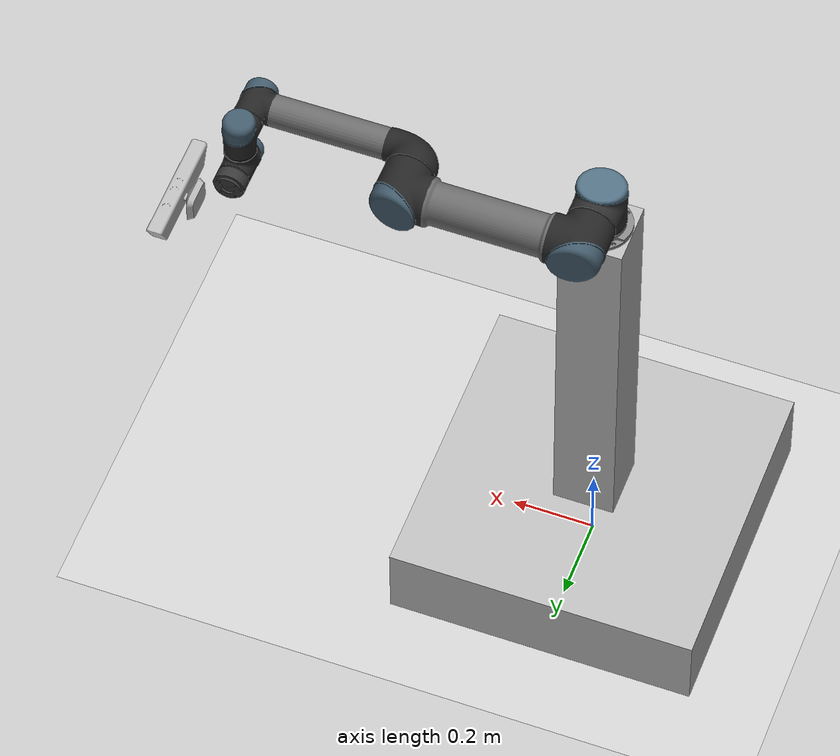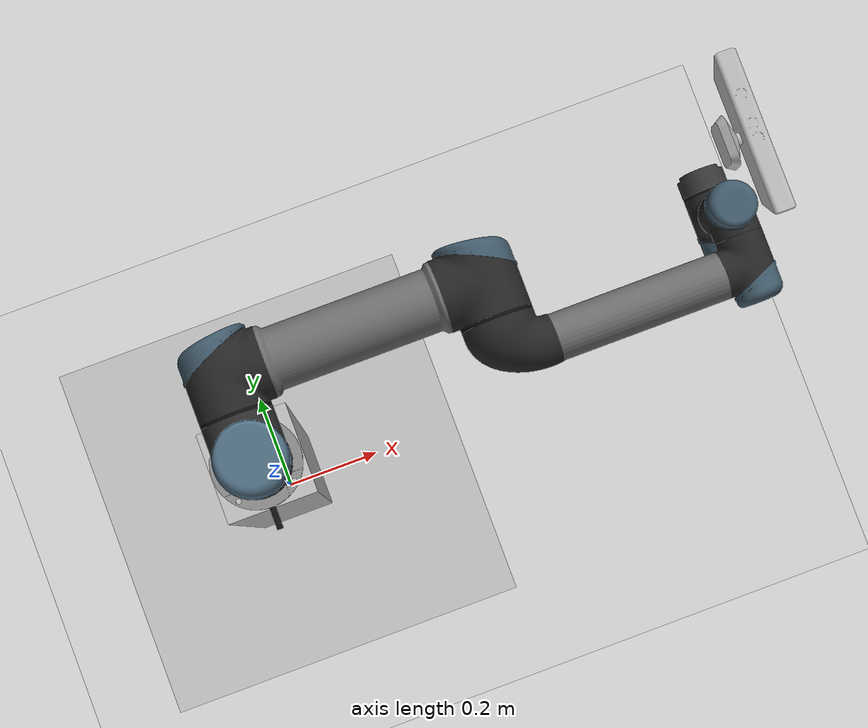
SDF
<sdf version="1.4">
 <world name="world">
  <model name="ground_plane">
   <static>1</static>
   <link name="link">
    <collision name="collision">
     <geometry><plane><normal>0 0 1</normal><size>100 100</size></plane></geometry>
     <surface><friction><ode><mu>100</mu><mu2>50</mu2></ode></friction></surface>
    </collision>
    <visual name="visual">
     <cast_shadows>0</cast_shadows>
     <geometry><plane><normal>0 0 1</normal><size>100 100</size></plane></geometry>
     <material>
      <script><uri>file://media/materials/scripts/gazebo.material</uri><name>Gazebo/Grey</name></script>
     </material>
    </visual>
    <velocity_decay><linear>0</linear><angular>0</angular></velocity_decay>
   </link>
  </model>
  <light name="sun" type="directional">
   <pose>0 0 10 0 -0 0</pose>
   <diffuse>0.8 0.8 0.8 1</diffuse>
   <specular>0.2 0.2 0.2 1</specular>
   <attenuation>
    <range>1000</range>
    <constant>0.9</constant>
    <linear>0.01</linear>
    <quadratic>0.001</quadratic>
   </attenuation>
   <direction>-0.5 0.1 -0.9</direction>
  </light>
  <physics type="ode">
   <max_step_size>0.001</max_step_size>
   <real_time_factor>1</real_time_factor>
   <real_time_update_rate>1000</real_time_update_rate>
   <gravity>0 0 -9.8</gravity>
  </physics>
  <scene><ambient>0.4 0.4 0.4 1</ambient><background>0.7 0.7 0.7 1</background><shadows>1</shadows></scene>
  <spherical_coordinates>
   <surface_model>EARTH_WGS84</surface_model>
   <latitude_deg>0</latitude_deg>
   <longitude_deg>0</longitude_deg>
   <elevation>0</elevation>
   <heading_deg>0</heading_deg>
  </spherical_coordinates>
  <model name="robot">
   <link name="ground_base1">
    <pose>0 0 -1.1 0 -0 0</pose>
    <inertial>
     <pose>0 0 0.0961039 0 -0 0</pose>
     <mass>154</mass>
     <inertia><ixx>8.3641</ixx><ixy>0</ixy><ixz>0</ixz><iyy>8.3641</iyy><iyz>0</iyz><izz>2.0512</izz></inertia>
    </inertial>
    <collision name="ground_base1_collision">
     <pose>0 0 0.1 0 -0 0</pose>
     <geometry><box><size>0.75 0.75 0.2</size></box></geometry>
    </collision>
    <collision name="ground_base1_collision_base_link">
     <pose>0 0 1.2 0 -0 0</pose>
     <geometry>
      <mesh>
       <scale>1 1 1</scale>
       <uri>/home/raina_pc/ur_vs_gazebo/src/universal_robot/ur_description/meshes/ur5/collision/base.stl</uri>
      </mesh>
     </geometry>
    </collision>
    <collision name="ground_base1_collision_base_pillar">
     <pose>0 0 0.7 0 -0 0</pose>
     <geometry><box><size>0.15 0.15 1</size></box></geometry>
    </collision>
    <visual name="ground_base1_visual">
     <pose>0 0 0.1 0 -0 0</pose>
     <geometry><box><size>0.75 0.75 0.2</size></box></geometry>
    </visual>
    <visual name="ground_base1_visual_base_link">
     <pose>0 0 1.2 0 -0 0</pose>
     <geometry>
      <mesh>
       <scale>1 1 1</scale>
       <uri>/home/raina_pc/ur_vs_gazebo/src/universal_robot/ur_description/meshes/ur5/visual/base.dae</uri>
      </mesh>
     </geometry>
    </visual>
    <visual name="ground_base1_visual_base_pillar">
     <pose>0 0 0.7 0 -0 0</pose>
     <geometry><box><size>0.15 0.15 1</size></box></geometry>
    </visual>
    <velocity_decay><linear>0</linear><angular>0</angular></velocity_decay>
   </link>
   <joint name="world_joint" type="revolute">
    <child>ground_base1</child>
    <parent>world</parent>
    <axis>
     <limit><lower>0</lower><upper>0</upper></limit>
     <dynamics><damping>0</damping></dynamics>
     <xyz>0 0 1</xyz>
    </axis>
   </joint>
   <link name="shoulder_link">
    <pose>0 0 0.189159 0 -0 0</pose>
    <inertial>
     <mass>3.7</mass>
     <inertia>
      <ixx>0.0102675</ixx>
      <ixy>0</ixy>
      <ixz>0</ixz>
      <iyy>0.0102675</iyy>
      <iyz>0</iyz>
      <izz>0.00666</izz>
     </inertia>
    </inertial>
    <collision name="shoulder_link_collision">
     <geometry>
      <mesh>
       <scale>1 1 1</scale>
       <uri>/home/raina_pc/ur_vs_gazebo/src/universal_robot/ur_description/meshes/ur5/collision/shoulder.stl</uri>
      </mesh>
     </geometry>
    </collision>
    <visual name="shoulder_link_visual">
     <geometry>
      <mesh>
       <scale>1 1 1</scale>
       <uri>/home/raina_pc/ur_vs_gazebo/src/universal_robot/ur_description/meshes/ur5/visual/shoulder.dae</uri>
      </mesh>
     </geometry>
    </visual>
    <velocity_decay><linear>0</linear><angular>0</angular></velocity_decay>
   </link>
   <joint name="shoulder_pan_joint" type="revolute">
    <child>shoulder_link</child>
    <parent>ground_base1</parent>
    <axis>
     <xyz>0 0 1</xyz>
     <limit><lower>-6.28319</lower><upper>6.28319</upper><effort>150</effort><velocity>3.15</velocity></limit>
     <dynamics><damping>0</damping></dynamics>
    </axis>
   </joint>
   <link name="upper_arm_link">
    <pose>0 0.13585 0.189159 3.14159 1.57079 3.14159</pose>
    <inertial>
     <pose>0 0 0.28 0 -0 0</pose>
     <mass>8.393</mass>
     <inertia>
      <ixx>0.226891</ixx>
      <ixy>0</ixy>
      <ixz>0</ixz>
      <iyy>0.226891</iyy>
      <iyz>0</iyz>
      <izz>0.0151074</izz>
     </inertia>
    </inertial>
    <collision name="upper_arm_link_collision">
     <geometry>
      <mesh>
       <scale>1 1 1</scale>
       <uri>/home/raina_pc/ur_vs_gazebo/src/universal_robot/ur_description/meshes/ur5/collision/upperarm.stl</uri>
      </mesh>
     </geometry>
    </collision>
    <visual name="upper_arm_link_visual">
     <geometry>
      <mesh>
       <scale>1 1 1</scale>
       <uri>/home/raina_pc/ur_vs_gazebo/src/universal_robot/ur_description/meshes/ur5/visual/upperarm.dae</uri>
      </mesh>
     </geometry>
    </visual>
    <velocity_decay><linear>0</linear><angular>0</angular></velocity_decay>
   </link>
   <joint name="shoulder_lift_joint" type="revolute">
    <child>upper_arm_link</child>
    <parent>shoulder_link</parent>
    <axis>
     <xyz>0 1 0</xyz>
     <limit><lower>-6.28319</lower><upper>6.28319</upper><effort>150</effort><velocity>3.15</velocity></limit>
     <dynamics><damping>0</damping></dynamics>
    </axis>
   </joint>
   <link name="forearm_link">
    <pose>0.425 0.01615 0.189159 3.14159 1.57079 3.14159</pose>
    <inertial>
     <pose>0 0 0.25 0 -0 0</pose>
     <mass>2.275</mass>
     <inertia>
      <ixx>0.0494433</ixx>
      <ixy>0</ixy>
      <ixz>0</ixz>
      <iyy>0.0494433</iyy>
      <iyz>0</iyz>
      <izz>0.004095</izz>
     </inertia>
    </inertial>
    <collision name="forearm_link_collision">
     <geometry>
      <mesh>
       <scale>1 1 1</scale>
       <uri>/home/raina_pc/ur_vs_gazebo/src/universal_robot/ur_description/meshes/ur5/collision/forearm.stl</uri>
      </mesh>
     </geometry>
    </collision>
    <visual name="forearm_link_visual">
     <geometry>
      <mesh>
       <scale>1 1 1</scale>
       <uri>/home/raina_pc/ur_vs_gazebo/src/universal_robot/ur_description/meshes/ur5/visual/forearm.dae</uri>
      </mesh>
     </geometry>
    </visual>
    <velocity_decay><linear>0</linear><angular>0</angular></velocity_decay>
   </link>
   <joint name="elbow_joint" type="revolute">
    <child>forearm_link</child>
    <parent>upper_arm_link</parent>
    <axis>
     <xyz>0 1 0</xyz>
     <limit><lower>-6.28319</lower><upper>6.28319</upper><effort>150</effort><velocity>3.15</velocity></limit>
     <dynamics><damping>0</damping></dynamics>
    </axis>
   </joint>
   <link name="wrist_1_link">
    <pose>0.81725 0.01615 0.189159 3.14159 3.58979e-09 3.14159</pose>
    <inertial>
     <mass>1.219</mass>
     <inertia>
      <ixx>0.111173</ixx>
      <ixy>0</ixy>
      <ixz>0</ixz>
      <iyy>0.111173</iyy>
      <iyz>0</iyz>
      <izz>0.21942</izz>
     </inertia>
    </inertial>
    <collision name="wrist_1_link_collision">
     <geometry>
      <mesh>
       <scale>1 1 1</scale>
       <uri>/home/raina_pc/ur_vs_gazebo/src/universal_robot/ur_description/meshes/ur5/collision/wrist1.stl</uri>
      </mesh>
     </geometry>
    </collision>
    <visual name="wrist_1_link_visual">
     <geometry>
      <mesh>
       <scale>1 1 1</scale>
       <uri>/home/raina_pc/ur_vs_gazebo/src/universal_robot/ur_description/meshes/ur5/visual/wrist1.dae</uri>
      </mesh>
     </geometry>
    </visual>
    <velocity_decay><linear>0</linear><angular>0</angular></velocity_decay>
   </link>
   <joint name="wrist_1_joint" type="revolute">
    <child>wrist_1_link</child>
    <parent>forearm_link</parent>
    <axis>
     <xyz>0 1 0</xyz>
     <limit><lower>-6.28319</lower><upper>6.28319</upper><effort>28</effort><velocity>3.2</velocity></limit>
     <dynamics><damping>0</damping></dynamics>
    </axis>
   </joint>
   <link name="wrist_2_link">
    <pose>0.81725 0.10915 0.189159 3.14159 3.58979e-09 3.14159</pose>
    <inertial>
     <mass>1.219</mass>
     <inertia>
      <ixx>0.111173</ixx>
      <ixy>0</ixy>
      <ixz>0</ixz>
      <iyy>0.111173</iyy>
      <iyz>0</iyz>
      <izz>0.21942</izz>
     </inertia>
    </inertial>
    <collision name="wrist_2_link_collision">
     <geometry>
      <mesh>
       <scale>1 1 1</scale>
       <uri>/home/raina_pc/ur_vs_gazebo/src/universal_robot/ur_description/meshes/ur5/collision/wrist2.stl</uri>
      </mesh>
     </geometry>
    </collision>
    <visual name="wrist_2_link_visual">
     <geometry>
      <mesh>
       <scale>1 1 1</scale>
       <uri>/home/raina_pc/ur_vs_gazebo/src/universal_robot/ur_description/meshes/ur5/visual/wrist2.dae</uri>
      </mesh>
     </geometry>
    </visual>
    <velocity_decay><linear>0</linear><angular>0</angular></velocity_decay>
   </link>
   <joint name="wrist_2_joint" type="revolute">
    <child>wrist_2_link</child>
    <parent>wrist_1_link</parent>
    <axis>
     <xyz>0 0 -1</xyz>
     <limit><lower>-6.28319</lower><upper>6.28319</upper><effort>28</effort><velocity>3.2</velocity></limit>
     <dynamics><damping>0</damping></dynamics>
    </axis>
   </joint>
   <link name="wrist_3_link">
    <pose>0.81725 0.10915 0.094509 3.14159 3.58979e-09 3.14159</pose>
    <inertial>
     <pose>-0.082511 0.0617332 0 0 -0 0</pose>
     <mass>0.7519</mass>
     <inertia>
      <ixx>0.0185901</ixx>
      <ixy>0.00127596</ixy>
      <ixz>0</ixz>
      <iyy>0.0227231</iyy>
      <iyz>0</iyz>
      <izz>0.0403613</izz>
     </inertia>
    </inertial>
    <collision name="wrist_3_link_collision">
     <geometry>
      <mesh>
       <scale>1 1 1</scale>
       <uri>/home/raina_pc/ur_vs_gazebo/src/universal_robot/ur_description/meshes/ur5/collision/wrist3.stl</uri>
      </mesh>
     </geometry>
    </collision>
    <collision name="wrist_3_link_collision_ee_link">
     <pose>-1.7949e-11 0.0723 0 0 -0 1.5708</pose>
     <geometry><box><size>0.01 0.01 0.01</size></box></geometry>
    </collision>
    <collision name="wrist_3_link_collision_kinect_link">
     <pose>-0.11 0.1123 0 1.57079 1.57079 -1.57079</pose>
     <geometry><box><size>0.07271 0.27794 0.073</size></box></geometry>
    </collision>
    <visual name="wrist_3_link_visual">
     <geometry>
      <mesh>
       <scale>1 1 1</scale>
       <uri>/home/raina_pc/ur_vs_gazebo/src/universal_robot/ur_description/meshes/ur5/visual/wrist3.dae</uri>
      </mesh>
     </geometry>
    </visual>
    <visual name="wrist_3_link_visual_kinect_link">
     <pose>-0.11 0.1123 0 1.57079 1.57079 -1.57079</pose>
     <geometry>
      <mesh>
       <scale>1 1 1</scale>
       <uri>/opt/ros/indigo/share/turtlebot_description/meshes/sensors/kinect.dae</uri>
      </mesh>
     </geometry>
    </visual>
    <velocity_decay><linear>0</linear><angular>0</angular></velocity_decay>
    <sensor name="camera" type="depth">
     <always_on>1</always_on>
     <update_rate>20</update_rate>
     <camera name="__default__">
      <horizontal_fov>1.0472</horizontal_fov>
      <image><format>B8G8R8</format><width>640</width><height>480</height></image>
      <clip><near>0.05</near><far>8</far></clip>
     </camera>
     <plugin name="kinect_camera_controller" filename="libgazebo_ros_openni_kinect.so">
      <cameraName>camera</cameraName>
      <alwaysOn>true</alwaysOn>
      <updateRate>10</updateRate>
      <imageTopicName>rgb/image_raw</imageTopicName>
      <depthImageTopicName>depth/image_raw</depthImageTopicName>
      <pointCloudTopicName>depth/points</pointCloudTopicName>
      <cameraInfoTopicName>rgb/camera_info</cameraInfoTopicName>
      <depthImageCameraInfoTopicName>depth/camera_info</depthImageCameraInfoTopicName>
      <frameName>camera_depth_optical_frame</frameName>
      <baseline>0.1</baseline>
      <distortion_k1>0.0</distortion_k1>
      <distortion_k2>0.0</distortion_k2>
      <distortion_k3>0.0</distortion_k3>
      <distortion_t1>0.0</distortion_t1>
      <distortion_t2>0.0</distortion_t2>
      <pointCloudCutoff>0.4</pointCloudCutoff>
      <robotNamespace>/</robotNamespace>
     </plugin>
     <pose>-0.125 0.1428 -0.0325 -1.5708 5.55112e-17 1.5708</pose>
    </sensor>
   </link>
   <joint name="wrist_3_joint" type="revolute">
    <child>wrist_3_link</child>
    <parent>wrist_2_link</parent>
    <axis>
     <xyz>0 1 0</xyz>
     <limit><lower>-6.28319</lower><upper>6.28319</upper><effort>28</effort><velocity>3.2</velocity></limit>
     <dynamics><damping>0</damping></dynamics>
    </axis>
   </joint>
   <static>0</static>
   <plugin name="ros_control" filename="libgazebo_ros_control.so"><robotNamespace>/</robotNamespace></plugin>
   <pose>-0 0 1.1 -0 -0 -0</pose>
  </model>
 </world>
</sdf>
